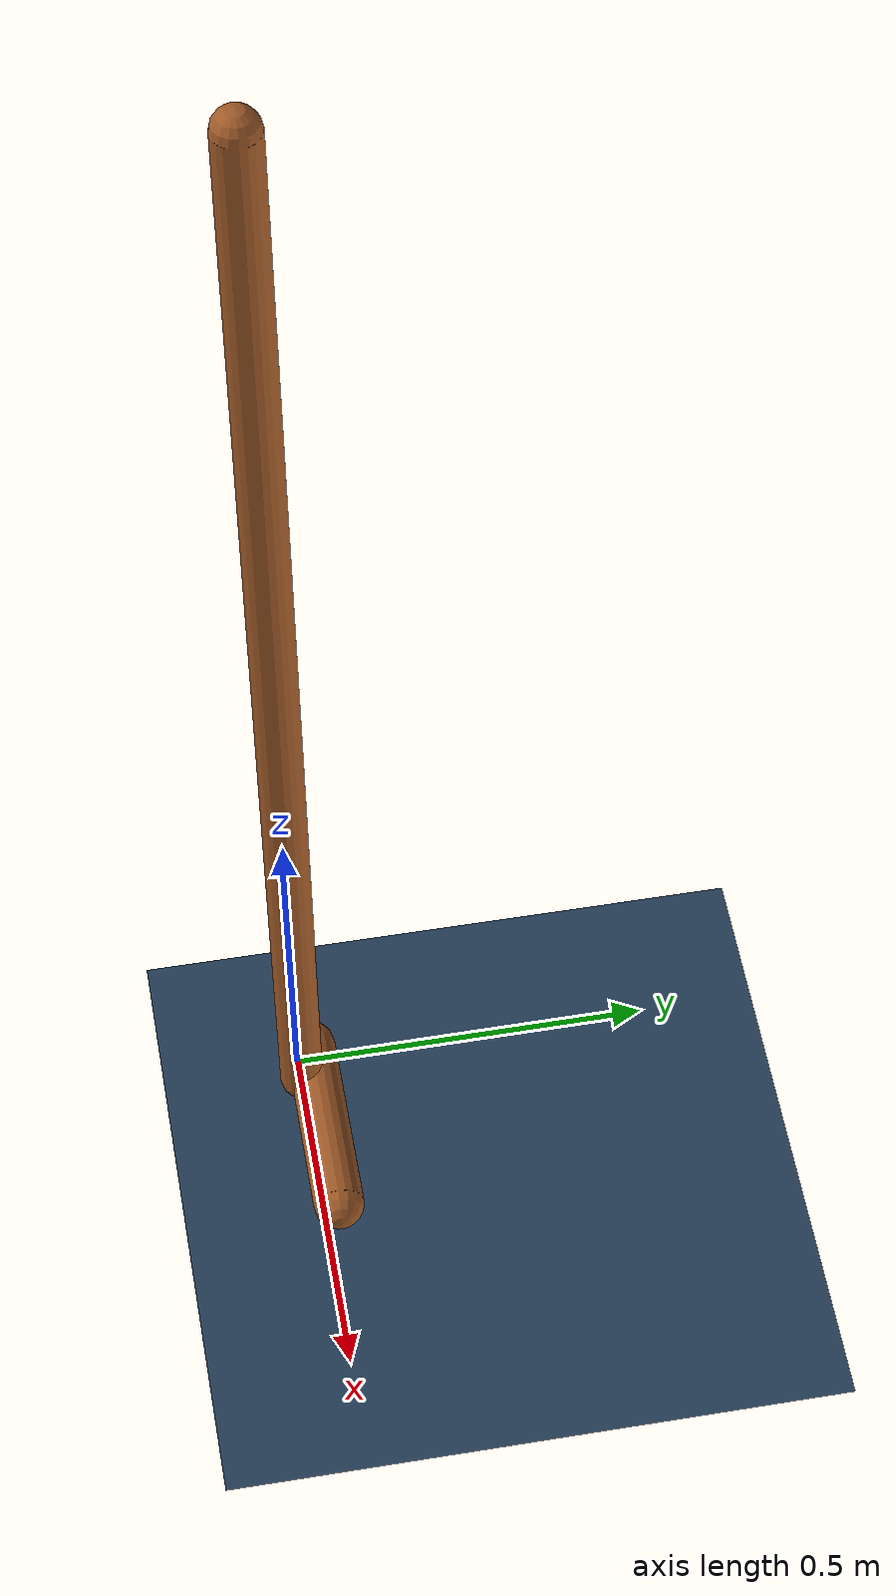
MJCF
<mujoco model="Leg">

  <option gravity="0 0 -9.81">

    <flag sensornoise="enable" />
  </option>

  <visual>
    <map zfar="30" />

    <rgba haze="0.15 0.25 0.35 1" />

  </visual>

  <statistic center="0 0 0.7" />

  <asset>
    <texture type="skybox" builtin="gradient" rgb1=".3 .5 .7" rgb2="0 0 0" width="32" height="512" />
    <texture name="body" type="cube" builtin="flat" mark="cross" width="128" height="128" rgb1="0.8 0.6 0.4" rgb2="0.8 0.6 0.4" markrgb="1 1 1" random="0.01" />
    <material name="body" texture="body" texuniform="true" rgba="0.8 0.6 .4 1" />
    <texture name="grid" type="2d" builtin="checker" width="512" height="512" rgb1=".1 .2 .3" rgb2=".2 .3 .4" />
    <material name="grid" texture="grid" texrepeat="1 1" texuniform="true" reflectance=".2" />
  </asset>

  <default>
    <motor ctrlrange="-1 1" ctrllimited="true" />
    <default class="body">

      <geom type="capsule" mass="10" condim="1" friction="0.7 0.005 0.0001" solimp=".9 .99 .003" solref=".015 1" material="body" group="1" />

      <default class="shin">

        <geom fromto="0 0 0.1 0 0 0" size="0.03" />
      </default>

      <default class="foot">
        <geom type="capsule" size=".035" friction="0.9 0 0" solimp=".9 .99 .003" solref=".015 1" mass="2" />

        <default class="foot1">
          <geom fromto="-.07 -0.01 0 .14 0.01 0" />
        </default>

        <default class="foot2">
          <geom fromto="-.14 -.01 0 .14 .01 0" />
        </default>
       </default>

      <default class="knee">
        <joint type="hinge" pos="0 0 .02" range="-160 160" />
      </default>

      <joint type="hinge" damping=".2" stiffness="1" armature=".01" limited="true" solimplimit="0 .99 .01" />
      <default class="ankle">
        <joint range="-50 50" />

        <default class="ankle_y">
          <joint pos="0 0 .04" axis="0 1 0" stiffness="6" />
        </default>

        <default class="ankle_x">
          <joint pos="0 0 .04" stiffness="3" />
        </default>
      </default>

    </default>
  </default>

	<worldbody>

      <geom name="ground" size="0 0 .05" type="plane" material="grid" condim="3" friction="0.99 0.99 0.99" solimp=".9 .99 .003" solref=".015 1" />

      <light name="spotlight" mode="targetbodycom" target="foot" diffuse=".8 .8 .8" specular="0.3 0.3 0.3" pos="0 -6 4" cutoff="30" />

        <body name="foot" pos="0 0 0.035">

          <joint name="rotation_dof" type="hinge" axis="0 -1 0" pos="0.27056 0 0.035" />
          <joint type="slide" name="joint_slide_x" axis="-1 0 0" pos="0.13528 0 0.035" />
          <joint type="slide" name="joint_slide_z" axis="0 0 1" pos="0.13528 0 0.035" />

          <geom name="foot1_right" class="foot2" fromto="0 .02 0 0.27056 .02 0" mass="2.3200000000000003" />

          <body name="shin_body" pos="0.051406400000000005 0 0.">

            <joint type="hinge" name="ankle_hinge" axis="0 -1 0" pos="0.051406400000000005 0 0" />
            <geom name="shin_geom" class="shin" fromto="0 0 1.78 0 0 0" mass="77.68" />

          </body>

        </body>

	</worldbody>

	<actuator>

      <motor joint="ankle_hinge" name="shin_actuator" gear="40" />

      <motor joint="ankle_hinge" name="exo_ankle_actuator_y" gear="40" />
	</actuator>

	<sensor>
      <jointpos joint="ankle_hinge" />

	</sensor>
</mujoco>
